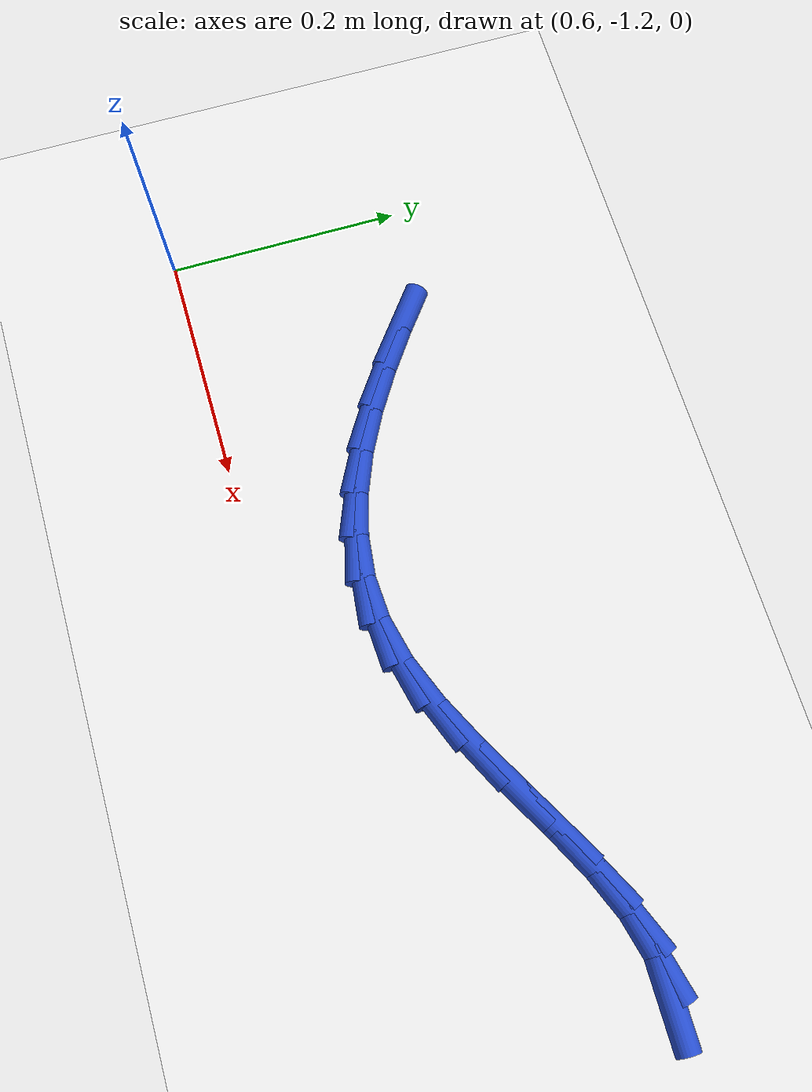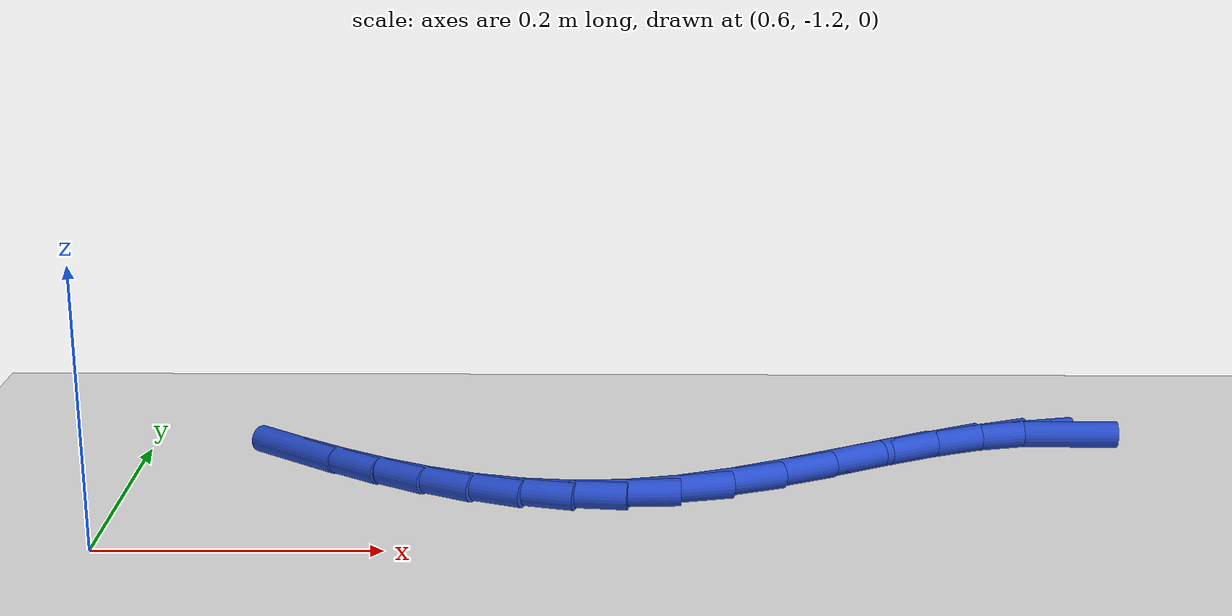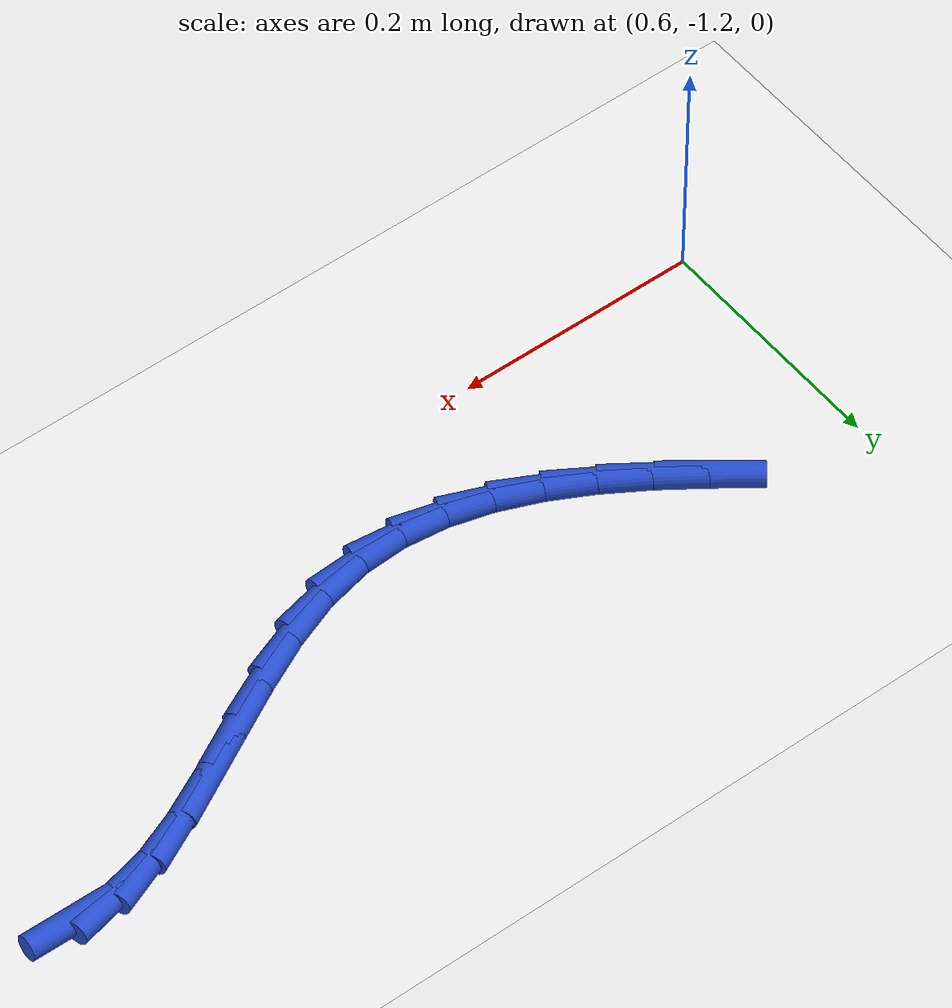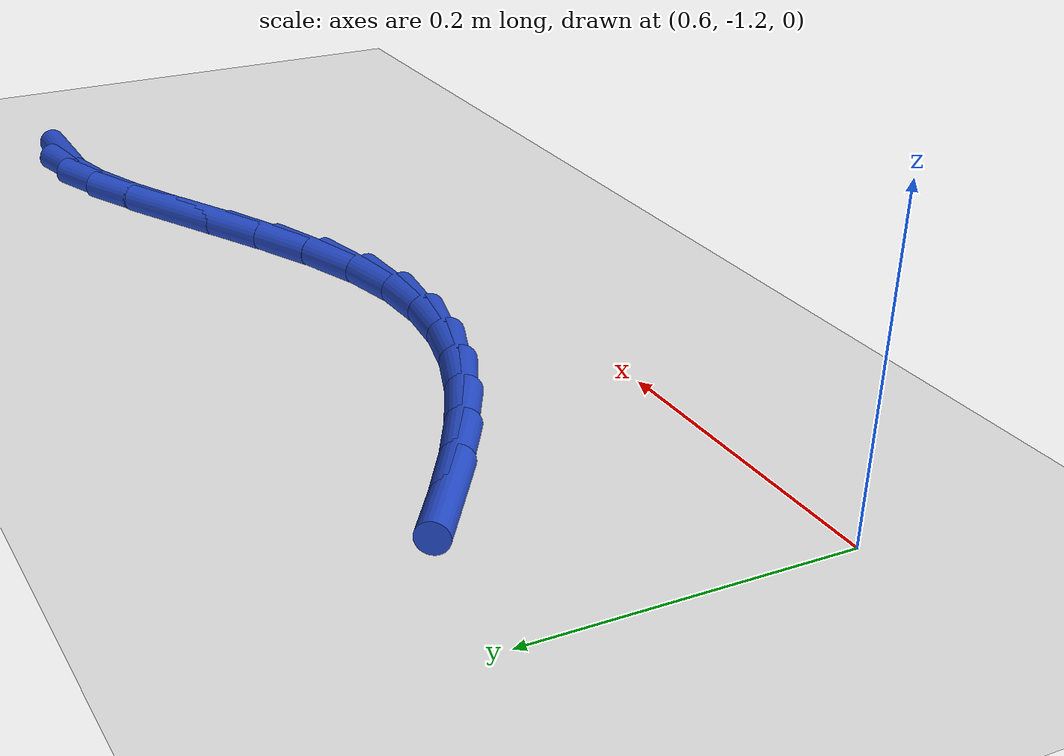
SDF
<sdf version="1.6">
 <world name="default">
  <model name="ground_plane">
   <static>1</static>
   <link name="link">
    <collision name="collision">
     <geometry><plane><normal>0 0 1</normal><size>100 100</size></plane></geometry>
     <surface><friction><ode><mu>100</mu><mu2>50</mu2></ode></friction></surface>
    </collision>
    <visual name="visual">
     <cast_shadows>0</cast_shadows>
     <geometry><plane><normal>0 0 1</normal><size>100 100</size></plane></geometry>
     <material>
      <script><uri>file://media/materials/scripts/gazebo.material</uri><name>Gazebo/WhiteGlow</name></script>
     </material>
    </visual>
   </link>
  </model>
  <model name="line">
   <link name="link_150">
    <pose>1.2980478805551727 -0.987899088774557 0.01 0 1.57 -0.012055154655001432</pose>
    <collision name="collision">
     <geometry><cylinder><radius>0.01</radius><length>0.08</length></cylinder></geometry>
    </collision>
    <visual name="visual">
     <material>
      <script><name>Gazebo/Blue</name><uri>file://media/materials/scripts/gazebo.material</uri></script>
     </material>
     <geometry><cylinder><radius>0.01</radius><length>0.08</length></cylinder></geometry>
    </visual>
   </link>
   <link name="link_151">
    <pose>1.265619358318585 -0.9875081389850904 0.01 0 1.57 0.23398053571519226</pose>
    <collision name="collision">
     <geometry><cylinder><radius>0.01</radius><length>0.08</length></cylinder></geometry>
    </collision>
    <visual name="visual">
     <material>
      <script><name>Gazebo/Blue</name><uri>file://media/materials/scripts/gazebo.material</uri></script>
     </material>
     <geometry><cylinder><radius>0.01</radius><length>0.08</length></cylinder></geometry>
    </visual>
   </link>
   <link name="link_152">
    <pose>1.2310043268874038 -0.9957584954338772 0.01 0 1.57 0.3850421758166899</pose>
    <collision name="collision">
     <geometry><cylinder><radius>0.01</radius><length>0.08</length></cylinder></geometry>
    </collision>
    <visual name="visual">
     <material>
      <script><name>Gazebo/Blue</name><uri>file://media/materials/scripts/gazebo.material</uri></script>
     </material>
     <geometry><cylinder><radius>0.01</radius><length>0.08</length></cylinder></geometry>
    </visual>
   </link>
   <link name="link_153">
    <pose>1.1946242412158536 -1.0105022937235066 0.01 0 1.57 0.46846121867760937</pose>
    <collision name="collision">
     <geometry><cylinder><radius>0.01</radius><length>0.08</length></cylinder></geometry>
    </collision>
    <visual name="visual">
     <material>
      <script><name>Gazebo/Blue</name><uri>file://media/materials/scripts/gazebo.material</uri></script>
     </material>
     <geometry><cylinder><radius>0.01</radius><length>0.08</length></cylinder></geometry>
    </visual>
   </link>
   <link name="link_154">
    <pose>1.156900556258161 -1.0295916694565679 0.01 0 1.57 0.5034763848104683</pose>
    <collision name="collision">
     <geometry><cylinder><radius>0.01</radius><length>0.08</length></cylinder></geometry>
    </collision>
    <visual name="visual">
     <material>
      <script><name>Gazebo/Blue</name><uri>file://media/materials/scripts/gazebo.material</uri></script>
     </material>
     <geometry><cylinder><radius>0.01</radius><length>0.08</length></cylinder></geometry>
    </visual>
   </link>
   <link name="link_155">
    <pose>1.1182547269685503 -1.0508787582356507 0.01 0 1.57 0.49903739482040166</pose>
    <collision name="collision">
     <geometry><cylinder><radius>0.01</radius><length>0.08</length></cylinder></geometry>
    </collision>
    <visual name="visual">
     <material>
      <script><name>Gazebo/Blue</name><uri>file://media/materials/scripts/gazebo.material</uri></script>
     </material>
     <geometry><cylinder><radius>0.01</radius><length>0.08</length></cylinder></geometry>
    </visual>
   </link>
   <link name="link_156">
    <pose>1.079108208301247 -1.0722156956633442 0.01 0 1.57 0.45599184233611456</pose>
    <collision name="collision">
     <geometry><cylinder><radius>0.01</radius><length>0.08</length></cylinder></geometry>
    </collision>
    <visual name="visual">
     <material>
      <script><name>Gazebo/Blue</name><uri>file://media/materials/scripts/gazebo.material</uri></script>
     </material>
     <geometry><cylinder><radius>0.01</radius><length>0.08</length></cylinder></geometry>
    </visual>
   </link>
   <link name="link_157">
    <pose>1.0398824552104766 -1.0914546173422375 0.01 0 1.57 0.368021238502004</pose>
    <collision name="collision">
     <geometry><cylinder><radius>0.01</radius><length>0.08</length></cylinder></geometry>
    </collision>
    <visual name="visual">
     <material>
      <script><name>Gazebo/Blue</name><uri>file://media/materials/scripts/gazebo.material</uri></script>
     </material>
     <geometry><cylinder><radius>0.01</radius><length>0.08</length></cylinder></geometry>
    </visual>
   </link>
   <link name="link_158">
    <pose>1.0009989226504639 -1.10644765887492 0.01 0 1.57 0.22417075466654593</pose>
    <collision name="collision">
     <geometry><cylinder><radius>0.01</radius><length>0.08</length></cylinder></geometry>
    </collision>
    <visual name="visual">
     <material>
      <script><name>Gazebo/Blue</name><uri>file://media/materials/scripts/gazebo.material</uri></script>
     </material>
     <geometry><cylinder><radius>0.01</radius><length>0.08</length></cylinder></geometry>
    </visual>
   </link>
   <link name="link_159">
    <pose>0.9628625135225991 -1.115142868888289 0.01 0 1.57 0.05029658621563663</pose>
    <collision name="collision">
     <geometry><cylinder><radius>0.01</radius><length>0.08</length></cylinder></geometry>
    </collision>
    <visual name="visual">
     <material>
      <script><name>Gazebo/Blue</name><uri>file://media/materials/scripts/gazebo.material</uri></script>
     </material>
     <geometry><cylinder><radius>0.01</radius><length>0.08</length></cylinder></geometry>
    </visual>
   </link>
   <link name="link_160">
    <pose>0.925614158857715 -1.1170179153676127 0.01 0 1.57 -0.11585351504980994</pose>
    <collision name="collision">
     <geometry><cylinder><radius>0.01</radius><length>0.08</length></cylinder></geometry>
    </collision>
    <visual name="visual">
     <material>
      <script><name>Gazebo/Blue</name><uri>file://media/materials/scripts/gazebo.material</uri></script>
     </material>
     <geometry><cylinder><radius>0.01</radius><length>0.08</length></cylinder></geometry>
    </visual>
   </link>
   <link name="link_161">
    <pose>0.8891829081279037 -1.1127782415654401 0.01 0 1.57 -0.26313024492044634</pose>
    <collision name="collision">
     <geometry><cylinder><radius>0.01</radius><length>0.08</length></cylinder></geometry>
    </collision>
    <visual name="visual">
     <material>
      <script><name>Gazebo/Blue</name><uri>file://media/materials/scripts/gazebo.material</uri></script>
     </material>
     <geometry><cylinder><radius>0.01</radius><length>0.08</length></cylinder></geometry>
    </visual>
   </link>
   <link name="link_162">
    <pose>0.8534918348694249 -1.1031639190722466 0.01 0 1.57 -0.3863444148132972</pose>
    <collision name="collision">
     <geometry><cylinder><radius>0.01</radius><length>0.08</length></cylinder></geometry>
    </collision>
    <visual name="visual">
     <material>
      <script><name>Gazebo/Blue</name><uri>file://media/materials/scripts/gazebo.material</uri></script>
     </material>
     <geometry><cylinder><radius>0.01</radius><length>0.08</length></cylinder></geometry>
    </visual>
   </link>
   <link name="link_163">
    <pose>0.8184640126185372 -1.0889150194785053 0.01 0 1.57 -0.48484848604543324</pose>
    <collision name="collision">
     <geometry><cylinder><radius>0.01</radius><length>0.08</length></cylinder></geometry>
    </collision>
    <visual name="visual">
     <material>
      <script><name>Gazebo/Blue</name><uri>file://media/materials/scripts/gazebo.material</uri></script>
     </material>
     <geometry><cylinder><radius>0.01</radius><length>0.08</length></cylinder></geometry>
    </visual>
   </link>
   <link name="link_164">
    <pose>0.7840225149114994 -1.0707716143746904 0.01 0 1.57 -0.5605102052290201</pose>
    <collision name="collision">
     <geometry><cylinder><radius>0.01</radius><length>0.08</length></cylinder></geometry>
    </collision>
    <visual name="visual">
     <material>
      <script><name>Gazebo/Blue</name><uri>file://media/materials/scripts/gazebo.material</uri></script>
     </material>
     <geometry><cylinder><radius>0.01</radius><length>0.08</length></cylinder></geometry>
    </visual>
   </link>
   <link name="link_165">
    <pose>0.7500904152845704 -1.049473775351276 0.01 0 1.57 -0.6159648653195717</pose>
    <collision name="collision">
     <geometry><cylinder><radius>0.01</radius><length>0.08</length></cylinder></geometry>
    </collision>
    <visual name="visual">
     <material>
      <script><name>Gazebo/Blue</name><uri>file://media/materials/scripts/gazebo.material</uri></script>
     </material>
     <geometry><cylinder><radius>0.01</radius><length>0.08</length></cylinder></geometry>
    </visual>
   </link>
   <link name="link_166">
    <pose>0.7165907872740097 -1.0257615739987367 0.01 0 1.57 -0.6536270549375239</pose>
    <collision name="collision">
     <geometry><cylinder><radius>0.01</radius><length>0.08</length></cylinder></geometry>
    </collision>
    <visual name="visual">
     <material>
      <script><name>Gazebo/Blue</name><uri>file://media/materials/scripts/gazebo.material</uri></script>
     </material>
     <geometry><cylinder><radius>0.01</radius><length>0.08</length></cylinder></geometry>
    </visual>
   </link>
  </model>
 </world>
</sdf>
